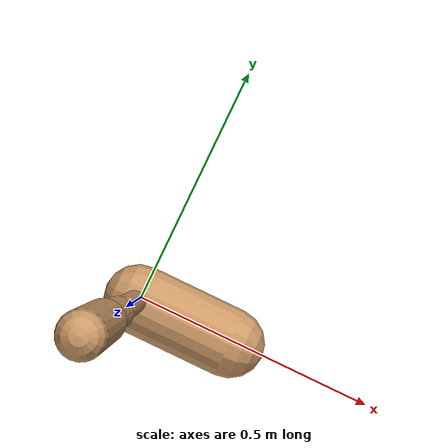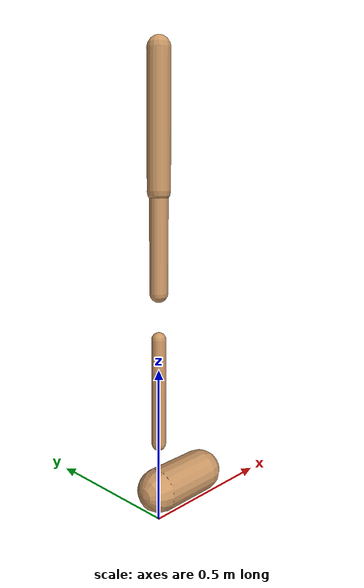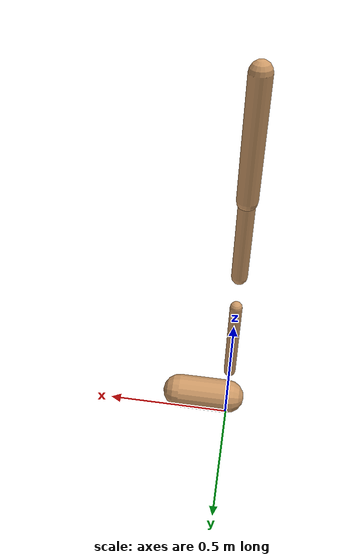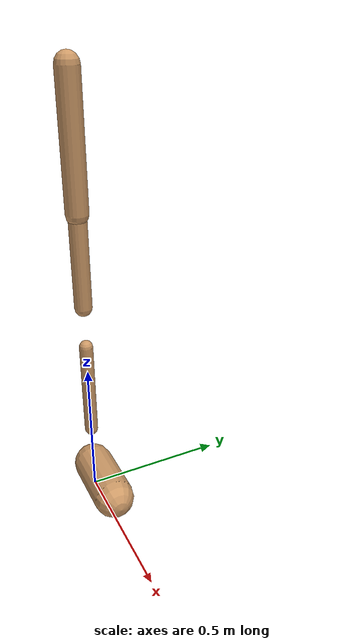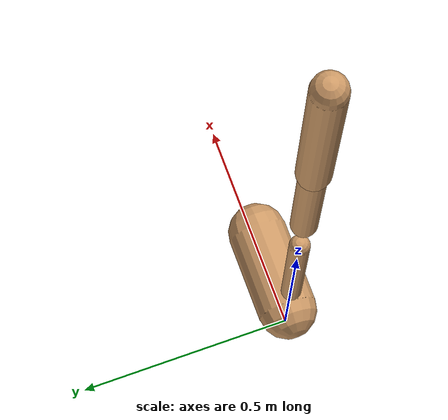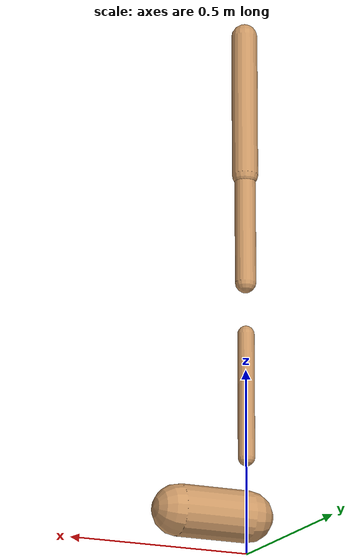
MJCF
<mujoco model="walker2d">
  <compiler angle="degree" coordinate="global" inertiafromgeom="true" />
  <default>
    <joint armature="0.01" damping=".1" limited="true" />
    <geom conaffinity="0" condim="3" contype="1" density="1000" friction="0.8 .1 .1" rgba="0.8 0.6 .4 1" />
  </default>
  <option integrator="RK4" timestep="0.002" />
  <worldbody>

    <body name="torso" pos="0 0 -0.30551282916731537">
      <joint armature="0" axis="1 0 0" damping="0" limited="false" name="ignorex" pos="0 0 0" stiffness="0" type="slide" />
      <joint armature="0" axis="0 0 1" damping="0" limited="false" name="ignorez" pos="0 0 0" ref="1.25" stiffness="0" type="slide" />
      <joint armature="0" axis="0 1 0" damping="0" limited="false" name="ignorey" pos="0 0 0" stiffness="0" type="hinge" />
      <geom fromto="0 0 1.45 0 0 1.05" name="torso_geom" size="0.03545670689722522" type="capsule" />
      <body name="thigh">
        <joint axis="0 -1 0" name="thigh_joint" pos="0 0 1.05" range="-150 0" type="hinge" />
        <geom fromto="0.0 0.0 1.05 0.0 0.0 0.744716603289781" name="thigh_geom" size="0.028565754617385183" type="capsule" />
        <body name="leg" pos="0.0 0.0 0.14471660328978098">
          <joint axis="0 -1 0" name="leg_joint" pos="0 0 0.6" range="-150 0" type="hinge" />
          <geom fromto="0.0 0.0 0.6 0.0 0.0 0.26079622587753437" name="leg_geom" size="0.022852603693908145" type="capsule" />
          <body name="foot" pos="0.0 0.0 0.16079622587753437">
            <joint axis="0 -1 0" name="foot_joint" pos="0 0 0.1" range="-45 45" type="hinge" />
            <geom fromto="0.0 0.0 0.1 0.19869611303422352 0.0 0.1" name="foot_geom" size="0.06921003507571903" type="capsule" />
          </body>
        </body>
      </body>

      <body name="thigh_left">
        <joint axis="0 -1 0" name="thigh_left_joint" pos="0 0 1.05" range="-150 0" type="hinge" />
        <geom fromto="0.0 0.0 1.05 0.0 0.0 0.744716603289781" name="thigh_left_geom" rgba=".7 .3 .6 1" size="0.028565754617385183" type="capsule" />
        <body name="leg_left" pos="0.0 0.0 0.14471660328978098">
          <joint axis="0 -1 0" name="leg_left_joint" pos="0 0 0.6" range="-150 0" type="hinge" />
          <geom fromto="0.0 0.0 0.6 0.0 0.0 0.26079622587753437" name="leg_left_geom" rgba=".7 .3 .6 1" size="0.022852603693908145" type="capsule" />
          <body name="foot_left" pos="0.0 0.0 0.16079622587753437">
            <joint axis="0 -1 0" name="foot_left_joint" pos="0 0 0.1" range="-45 45" type="hinge" />
            <geom fromto="0.0 0.0 0.1 0.19869611303422352 0.0 0.1" name="foot_left_geom" rgba=".7 .3 .6 1" size="0.06921003507571903" type="capsule" />
          </body>
        </body>
      </body>
    </body>
  </worldbody>
  <actuator>

    <motor ctrllimited="true" ctrlrange="-1.0 1.0" gear="100" joint="thigh_joint" />
    <motor ctrllimited="true" ctrlrange="-1.0 1.0" gear="100" joint="leg_joint" />
    <motor ctrllimited="true" ctrlrange="-1.0 1.0" gear="100" joint="foot_joint" />
    <motor ctrllimited="true" ctrlrange="-1.0 1.0" gear="100" joint="thigh_left_joint" />
    <motor ctrllimited="true" ctrlrange="-1.0 1.0" gear="100" joint="leg_left_joint" />
    <motor ctrllimited="true" ctrlrange="-1.0 1.0" gear="100" joint="foot_left_joint" />

  </actuator>
</mujoco>
